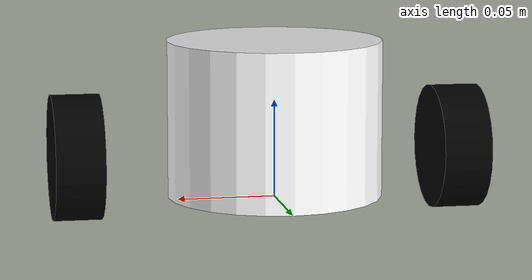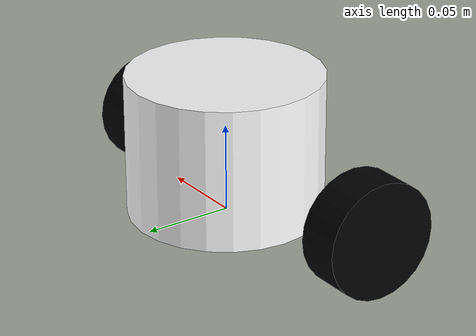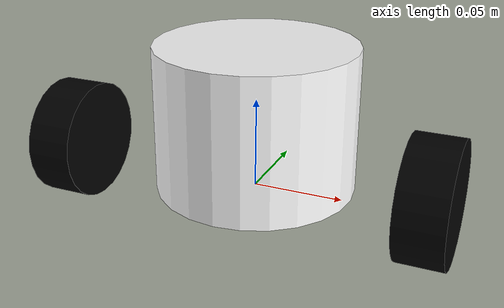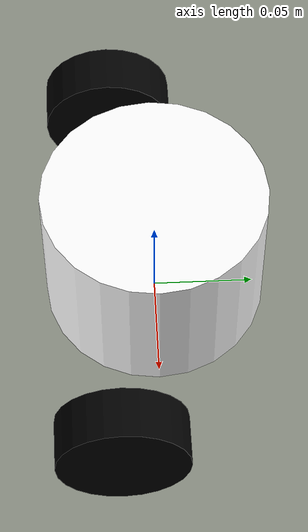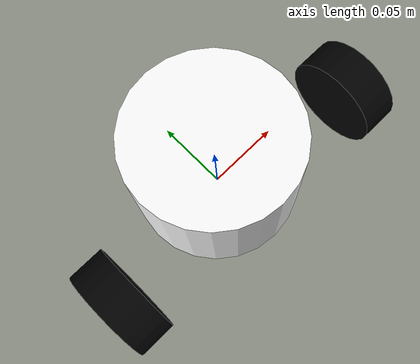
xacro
<?xml version="1.0"?>
<robot xmlns:xacro="http://www.ros.org/wiki/xacro" name="kris_robot">
  <xacro:arg name="robot_name" default="kris_robot"/>
  <xacro:arg name="frame_prefix" default=""/>

  <xacro:property name="p" value="$(arg frame_prefix)"/>

  <!--
    URDF companion model for robot_state_publisher / joint_state_publisher.
    Use frame_prefix (for example robot1_) to avoid TF frame collisions.
  -->
  <link name="${p}base_link">
    <visual>
      <geometry>
        <cylinder length="0.08" radius="0.055"/>
      </geometry>
      <origin rpy="0 0 0" xyz="0 0 0.041"/>
      <material name="white">
        <color rgba="1 1 1 1"/>
      </material>
    </visual>
  </link>

  <joint name="${p}base_link_to_lwheel" type="continuous">
    <parent link="${p}base_link"/>
    <child link="${p}lwheel"/>
    <origin rpy="1.5708 1.5708 0" xyz="0.050 0 0.02"/>
  </joint>

  <link name="${p}lwheel">
    <visual>
      <geometry>
        <cylinder length="0.025" radius="0.0325"/>
      </geometry>
      <origin rpy="1.5708 1.5708 0" xyz="0 0.050 0.02"/>
      <material name="black">
        <color rgba="0 0 0 1"/>
      </material>
    </visual>
  </link>

  <joint name="${p}base_link_to_rwheel" type="continuous">
    <parent link="${p}base_link"/>
    <child link="${p}rwheel"/>
    <origin rpy="1.5708 1.5708 0" xyz="-0.050 0 0.02"/>
  </joint>

  <link name="${p}rwheel">
    <visual>
      <geometry>
        <cylinder length="0.025" radius="0.0325"/>
      </geometry>
      <origin rpy="1.5708 1.5708 0" xyz="0 -0.050 0.02"/>
      <material name="black">
        <color rgba="0 0 0 1"/>
      </material>
    </visual>
  </link>
</robot>
